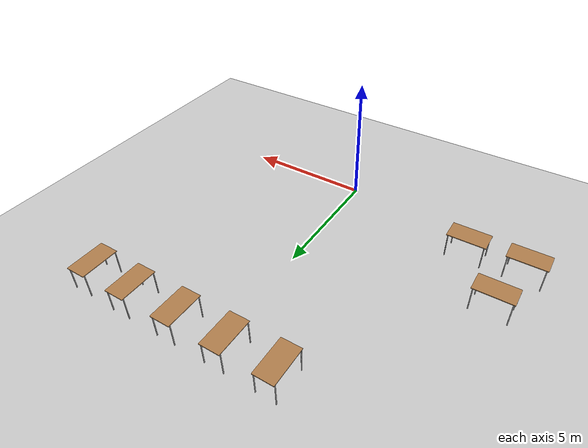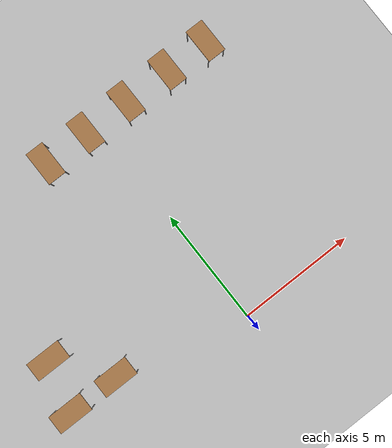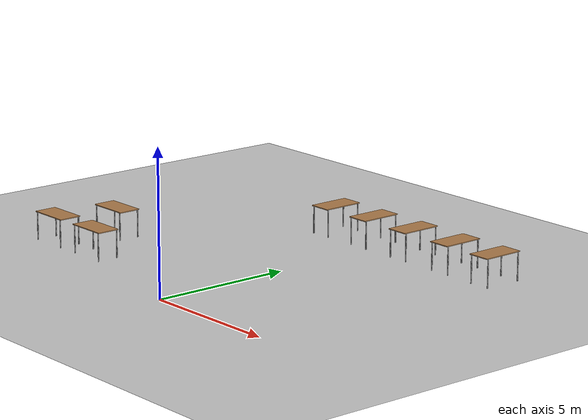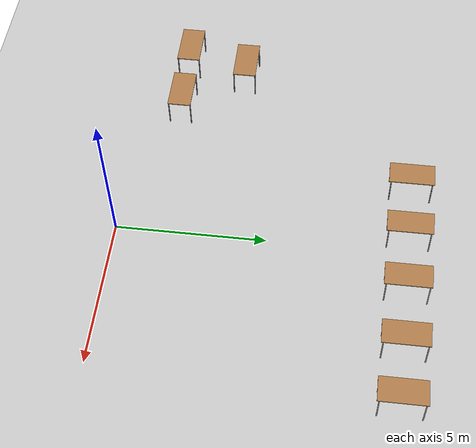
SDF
<sdf version="1.6">
 <world name="default">
  <model name="ground_plane">
   <static>1</static>
   <link name="link">
    <collision name="collision">
     <geometry><plane><normal>0 0 1</normal><size>100 100</size></plane></geometry>
     <surface>
      <contact><collide_bitmask>65535</collide_bitmask></contact>
      <friction><ode><mu>100</mu><mu2>50</mu2></ode></friction>
     </surface>
    </collision>
    <visual name="visual">
     <cast_shadows>0</cast_shadows>
     <geometry><plane><normal>0 0 1</normal><size>100 100</size></plane></geometry>
     <material>
      <script><uri>file://media/materials/scripts/gazebo.material</uri><name>Gazebo/Grey</name></script>
     </material>
    </visual>
   </link>
  </model>
  <model name="table_clone">
   <static>1</static>
   <link name="link">
    <collision name="surface">
     <pose>0 0 1 0 -0 0</pose>
     <geometry><box><size>1.5 0.8 0.03</size></box></geometry>
     <surface><friction><ode><mu>0.6</mu><mu2>0.6</mu2></ode></friction></surface>
    </collision>
    <visual name="visual1">
     <pose>0 0 1 0 -0 0</pose>
     <geometry><box><size>1.5 0.8 0.03</size></box></geometry>
     <material>
      <script><uri>file://media/materials/scripts/gazebo.material</uri><name>Gazebo/Wood</name></script>
     </material>
    </visual>
    <collision name="front_left_leg">
     <pose>0.68 0.38 0.5 0 -0 0</pose>
     <geometry><cylinder><radius>0.02</radius><length>1</length></cylinder></geometry>
    </collision>
    <visual name="front_left_leg">
     <pose>0.68 0.38 0.5 0 -0 0</pose>
     <geometry><cylinder><radius>0.02</radius><length>1</length></cylinder></geometry>
     <material>
      <script><uri>file://media/materials/scripts/gazebo.material</uri><name>Gazebo/Grey</name></script>
     </material>
    </visual>
    <collision name="front_right_leg">
     <pose>0.68 -0.38 0.5 0 -0 0</pose>
     <geometry><cylinder><radius>0.02</radius><length>1</length></cylinder></geometry>
    </collision>
    <visual name="front_right_leg">
     <pose>0.68 -0.38 0.5 0 -0 0</pose>
     <geometry><cylinder><radius>0.02</radius><length>1</length></cylinder></geometry>
     <material>
      <script><uri>file://media/materials/scripts/gazebo.material</uri><name>Gazebo/Grey</name></script>
     </material>
    </visual>
    <collision name="back_right_leg">
     <pose>-0.68 -0.38 0.5 0 -0 0</pose>
     <geometry><cylinder><radius>0.02</radius><length>1</length></cylinder></geometry>
    </collision>
    <visual name="back_right_leg">
     <pose>-0.68 -0.38 0.5 0 -0 0</pose>
     <geometry><cylinder><radius>0.02</radius><length>1</length></cylinder></geometry>
     <material>
      <script><uri>file://media/materials/scripts/gazebo.material</uri><name>Gazebo/Grey</name></script>
     </material>
    </visual>
    <collision name="back_left_leg">
     <pose>-0.68 0.38 0.5 0 -0 0</pose>
     <geometry><cylinder><radius>0.02</radius><length>1</length></cylinder></geometry>
    </collision>
    <visual name="back_left_leg">
     <pose>-0.68 0.38 0.5 0 -0 0</pose>
     <geometry><cylinder><radius>0.02</radius><length>1</length></cylinder></geometry>
     <material>
      <script><uri>file://media/materials/scripts/gazebo.material</uri><name>Gazebo/Grey</name></script>
     </material>
    </visual>
   </link>
   <pose>5.36982 9.5628 0 0 0 -1.57</pose>
  </model>
  <model name="table_clone_0">
   <static>1</static>
   <link name="link">
    <collision name="surface">
     <pose>0 0 1 0 -0 0</pose>
     <geometry><box><size>1.5 0.8 0.03</size></box></geometry>
     <surface><friction><ode><mu>0.6</mu><mu2>0.6</mu2></ode></friction></surface>
    </collision>
    <visual name="visual1">
     <pose>0 0 1 0 -0 0</pose>
     <geometry><box><size>1.5 0.8 0.03</size></box></geometry>
     <material>
      <script><uri>file://media/materials/scripts/gazebo.material</uri><name>Gazebo/Wood</name></script>
     </material>
    </visual>
    <collision name="front_left_leg">
     <pose>0.68 0.38 0.5 0 -0 0</pose>
     <geometry><cylinder><radius>0.02</radius><length>1</length></cylinder></geometry>
    </collision>
    <visual name="front_left_leg">
     <pose>0.68 0.38 0.5 0 -0 0</pose>
     <geometry><cylinder><radius>0.02</radius><length>1</length></cylinder></geometry>
     <material>
      <script><uri>file://media/materials/scripts/gazebo.material</uri><name>Gazebo/Grey</name></script>
     </material>
    </visual>
    <collision name="front_right_leg">
     <pose>0.68 -0.38 0.5 0 -0 0</pose>
     <geometry><cylinder><radius>0.02</radius><length>1</length></cylinder></geometry>
    </collision>
    <visual name="front_right_leg">
     <pose>0.68 -0.38 0.5 0 -0 0</pose>
     <geometry><cylinder><radius>0.02</radius><length>1</length></cylinder></geometry>
     <material>
      <script><uri>file://media/materials/scripts/gazebo.material</uri><name>Gazebo/Grey</name></script>
     </material>
    </visual>
    <collision name="back_right_leg">
     <pose>-0.68 -0.38 0.5 0 -0 0</pose>
     <geometry><cylinder><radius>0.02</radius><length>1</length></cylinder></geometry>
    </collision>
    <visual name="back_right_leg">
     <pose>-0.68 -0.38 0.5 0 -0 0</pose>
     <geometry><cylinder><radius>0.02</radius><length>1</length></cylinder></geometry>
     <material>
      <script><uri>file://media/materials/scripts/gazebo.material</uri><name>Gazebo/Grey</name></script>
     </material>
    </visual>
    <collision name="back_left_leg">
     <pose>-0.68 0.38 0.5 0 -0 0</pose>
     <geometry><cylinder><radius>0.02</radius><length>1</length></cylinder></geometry>
    </collision>
    <visual name="back_left_leg">
     <pose>-0.68 0.38 0.5 0 -0 0</pose>
     <geometry><cylinder><radius>0.02</radius><length>1</length></cylinder></geometry>
     <material>
      <script><uri>file://media/materials/scripts/gazebo.material</uri><name>Gazebo/Grey</name></script>
     </material>
    </visual>
   </link>
   <pose>3.47417 9.59504 0 0 0 -1.57</pose>
  </model>
  <model name="table_clone_1">
   <static>1</static>
   <link name="link">
    <collision name="surface">
     <pose>0 0 1 0 -0 0</pose>
     <geometry><box><size>1.5 0.8 0.03</size></box></geometry>
     <surface><friction><ode><mu>0.6</mu><mu2>0.6</mu2></ode></friction></surface>
    </collision>
    <visual name="visual1">
     <pose>0 0 1 0 -0 0</pose>
     <geometry><box><size>1.5 0.8 0.03</size></box></geometry>
     <material>
      <script><uri>file://media/materials/scripts/gazebo.material</uri><name>Gazebo/Wood</name></script>
     </material>
    </visual>
    <collision name="front_left_leg">
     <pose>0.68 0.38 0.5 0 -0 0</pose>
     <geometry><cylinder><radius>0.02</radius><length>1</length></cylinder></geometry>
    </collision>
    <visual name="front_left_leg">
     <pose>0.68 0.38 0.5 0 -0 0</pose>
     <geometry><cylinder><radius>0.02</radius><length>1</length></cylinder></geometry>
     <material>
      <script><uri>file://media/materials/scripts/gazebo.material</uri><name>Gazebo/Grey</name></script>
     </material>
    </visual>
    <collision name="front_right_leg">
     <pose>0.68 -0.38 0.5 0 -0 0</pose>
     <geometry><cylinder><radius>0.02</radius><length>1</length></cylinder></geometry>
    </collision>
    <visual name="front_right_leg">
     <pose>0.68 -0.38 0.5 0 -0 0</pose>
     <geometry><cylinder><radius>0.02</radius><length>1</length></cylinder></geometry>
     <material>
      <script><uri>file://media/materials/scripts/gazebo.material</uri><name>Gazebo/Grey</name></script>
     </material>
    </visual>
    <collision name="back_right_leg">
     <pose>-0.68 -0.38 0.5 0 -0 0</pose>
     <geometry><cylinder><radius>0.02</radius><length>1</length></cylinder></geometry>
    </collision>
    <visual name="back_right_leg">
     <pose>-0.68 -0.38 0.5 0 -0 0</pose>
     <geometry><cylinder><radius>0.02</radius><length>1</length></cylinder></geometry>
     <material>
      <script><uri>file://media/materials/scripts/gazebo.material</uri><name>Gazebo/Grey</name></script>
     </material>
    </visual>
    <collision name="back_left_leg">
     <pose>-0.68 0.38 0.5 0 -0 0</pose>
     <geometry><cylinder><radius>0.02</radius><length>1</length></cylinder></geometry>
    </collision>
    <visual name="back_left_leg">
     <pose>-0.68 0.38 0.5 0 -0 0</pose>
     <geometry><cylinder><radius>0.02</radius><length>1</length></cylinder></geometry>
     <material>
      <script><uri>file://media/materials/scripts/gazebo.material</uri><name>Gazebo/Grey</name></script>
     </material>
    </visual>
   </link>
   <pose>1.43565 9.59938 0 0 0 -1.57</pose>
  </model>
  <model name="table_clone_2">
   <static>1</static>
   <link name="link">
    <collision name="surface">
     <pose>0 0 1 0 -0 0</pose>
     <geometry><box><size>1.5 0.8 0.03</size></box></geometry>
     <surface><friction><ode><mu>0.6</mu><mu2>0.6</mu2></ode></friction></surface>
    </collision>
    <visual name="visual1">
     <pose>0 0 1 0 -0 0</pose>
     <geometry><box><size>1.5 0.8 0.03</size></box></geometry>
     <material>
      <script><uri>file://media/materials/scripts/gazebo.material</uri><name>Gazebo/Wood</name></script>
     </material>
    </visual>
    <collision name="front_left_leg">
     <pose>0.68 0.38 0.5 0 -0 0</pose>
     <geometry><cylinder><radius>0.02</radius><length>1</length></cylinder></geometry>
    </collision>
    <visual name="front_left_leg">
     <pose>0.68 0.38 0.5 0 -0 0</pose>
     <geometry><cylinder><radius>0.02</radius><length>1</length></cylinder></geometry>
     <material>
      <script><uri>file://media/materials/scripts/gazebo.material</uri><name>Gazebo/Grey</name></script>
     </material>
    </visual>
    <collision name="front_right_leg">
     <pose>0.68 -0.38 0.5 0 -0 0</pose>
     <geometry><cylinder><radius>0.02</radius><length>1</length></cylinder></geometry>
    </collision>
    <visual name="front_right_leg">
     <pose>0.68 -0.38 0.5 0 -0 0</pose>
     <geometry><cylinder><radius>0.02</radius><length>1</length></cylinder></geometry>
     <material>
      <script><uri>file://media/materials/scripts/gazebo.material</uri><name>Gazebo/Grey</name></script>
     </material>
    </visual>
    <collision name="back_right_leg">
     <pose>-0.68 -0.38 0.5 0 -0 0</pose>
     <geometry><cylinder><radius>0.02</radius><length>1</length></cylinder></geometry>
    </collision>
    <visual name="back_right_leg">
     <pose>-0.68 -0.38 0.5 0 -0 0</pose>
     <geometry><cylinder><radius>0.02</radius><length>1</length></cylinder></geometry>
     <material>
      <script><uri>file://media/materials/scripts/gazebo.material</uri><name>Gazebo/Grey</name></script>
     </material>
    </visual>
    <collision name="back_left_leg">
     <pose>-0.68 0.38 0.5 0 -0 0</pose>
     <geometry><cylinder><radius>0.02</radius><length>1</length></cylinder></geometry>
    </collision>
    <visual name="back_left_leg">
     <pose>-0.68 0.38 0.5 0 -0 0</pose>
     <geometry><cylinder><radius>0.02</radius><length>1</length></cylinder></geometry>
     <material>
      <script><uri>file://media/materials/scripts/gazebo.material</uri><name>Gazebo/Grey</name></script>
     </material>
    </visual>
   </link>
   <pose>-0.563458 9.59911 0 0 0 -1.57</pose>
  </model>
  <model name="table_clone_3">
   <static>1</static>
   <link name="link">
    <collision name="surface">
     <pose>0 0 1 0 -0 0</pose>
     <geometry><box><size>1.5 0.8 0.03</size></box></geometry>
     <surface><friction><ode><mu>0.6</mu><mu2>0.6</mu2></ode></friction></surface>
    </collision>
    <visual name="visual1">
     <pose>0 0 1 0 -0 0</pose>
     <geometry><box><size>1.5 0.8 0.03</size></box></geometry>
     <material>
      <script><uri>file://media/materials/scripts/gazebo.material</uri><name>Gazebo/Wood</name></script>
     </material>
    </visual>
    <collision name="front_left_leg">
     <pose>0.68 0.38 0.5 0 -0 0</pose>
     <geometry><cylinder><radius>0.02</radius><length>1</length></cylinder></geometry>
    </collision>
    <visual name="front_left_leg">
     <pose>0.68 0.38 0.5 0 -0 0</pose>
     <geometry><cylinder><radius>0.02</radius><length>1</length></cylinder></geometry>
     <material>
      <script><uri>file://media/materials/scripts/gazebo.material</uri><name>Gazebo/Grey</name></script>
     </material>
    </visual>
    <collision name="front_right_leg">
     <pose>0.68 -0.38 0.5 0 -0 0</pose>
     <geometry><cylinder><radius>0.02</radius><length>1</length></cylinder></geometry>
    </collision>
    <visual name="front_right_leg">
     <pose>0.68 -0.38 0.5 0 -0 0</pose>
     <geometry><cylinder><radius>0.02</radius><length>1</length></cylinder></geometry>
     <material>
      <script><uri>file://media/materials/scripts/gazebo.material</uri><name>Gazebo/Grey</name></script>
     </material>
    </visual>
    <collision name="back_right_leg">
     <pose>-0.68 -0.38 0.5 0 -0 0</pose>
     <geometry><cylinder><radius>0.02</radius><length>1</length></cylinder></geometry>
    </collision>
    <visual name="back_right_leg">
     <pose>-0.68 -0.38 0.5 0 -0 0</pose>
     <geometry><cylinder><radius>0.02</radius><length>1</length></cylinder></geometry>
     <material>
      <script><uri>file://media/materials/scripts/gazebo.material</uri><name>Gazebo/Grey</name></script>
     </material>
    </visual>
    <collision name="back_left_leg">
     <pose>-0.68 0.38 0.5 0 -0 0</pose>
     <geometry><cylinder><radius>0.02</radius><length>1</length></cylinder></geometry>
    </collision>
    <visual name="back_left_leg">
     <pose>-0.68 0.38 0.5 0 -0 0</pose>
     <geometry><cylinder><radius>0.02</radius><length>1</length></cylinder></geometry>
     <material>
      <script><uri>file://media/materials/scripts/gazebo.material</uri><name>Gazebo/Grey</name></script>
     </material>
    </visual>
   </link>
   <pose>-2.5236 9.5957 0 0 0 -1.57</pose>
  </model>
  <model name="table">
   <static>1</static>
   <link name="link">
    <collision name="surface">
     <pose>0 0 1 0 -0 0</pose>
     <geometry><box><size>1.5 0.8 0.03</size></box></geometry>
     <surface><friction><ode><mu>0.6</mu><mu2>0.6</mu2></ode></friction></surface>
    </collision>
    <visual name="visual1">
     <pose>0 0 1 0 -0 0</pose>
     <geometry><box><size>1.5 0.8 0.03</size></box></geometry>
     <material>
      <script><uri>file://media/materials/scripts/gazebo.material</uri><name>Gazebo/Wood</name></script>
     </material>
    </visual>
    <collision name="front_left_leg">
     <pose>0.68 0.38 0.5 0 -0 0</pose>
     <geometry><cylinder><radius>0.02</radius><length>1</length></cylinder></geometry>
    </collision>
    <visual name="front_left_leg">
     <pose>0.68 0.38 0.5 0 -0 0</pose>
     <geometry><cylinder><radius>0.02</radius><length>1</length></cylinder></geometry>
     <material>
      <script><uri>file://media/materials/scripts/gazebo.material</uri><name>Gazebo/Grey</name></script>
     </material>
    </visual>
    <collision name="front_right_leg">
     <pose>0.68 -0.38 0.5 0 -0 0</pose>
     <geometry><cylinder><radius>0.02</radius><length>1</length></cylinder></geometry>
    </collision>
    <visual name="front_right_leg">
     <pose>0.68 -0.38 0.5 0 -0 0</pose>
     <geometry><cylinder><radius>0.02</radius><length>1</length></cylinder></geometry>
     <material>
      <script><uri>file://media/materials/scripts/gazebo.material</uri><name>Gazebo/Grey</name></script>
     </material>
    </visual>
    <collision name="back_right_leg">
     <pose>-0.68 -0.38 0.5 0 -0 0</pose>
     <geometry><cylinder><radius>0.02</radius><length>1</length></cylinder></geometry>
    </collision>
    <visual name="back_right_leg">
     <pose>-0.68 -0.38 0.5 0 -0 0</pose>
     <geometry><cylinder><radius>0.02</radius><length>1</length></cylinder></geometry>
     <material>
      <script><uri>file://media/materials/scripts/gazebo.material</uri><name>Gazebo/Grey</name></script>
     </material>
    </visual>
    <collision name="back_left_leg">
     <pose>-0.68 0.38 0.5 0 -0 0</pose>
     <geometry><cylinder><radius>0.02</radius><length>1</length></cylinder></geometry>
    </collision>
    <visual name="back_left_leg">
     <pose>-0.68 0.38 0.5 0 -0 0</pose>
     <geometry><cylinder><radius>0.02</radius><length>1</length></cylinder></geometry>
     <material>
      <script><uri>file://media/materials/scripts/gazebo.material</uri><name>Gazebo/Grey</name></script>
     </material>
    </visual>
   </link>
   <pose>-7.63732 1.38708 0 0 -0 0</pose>
  </model>
  <model name="table_clone_4">
   <static>1</static>
   <link name="link">
    <collision name="surface">
     <pose>0 0 1 0 -0 0</pose>
     <geometry><box><size>1.5 0.8 0.03</size></box></geometry>
     <surface><friction><ode><mu>0.6</mu><mu2>0.6</mu2></ode></friction></surface>
    </collision>
    <visual name="visual1">
     <pose>0 0 1 0 -0 0</pose>
     <geometry><box><size>1.5 0.8 0.03</size></box></geometry>
     <material>
      <script><uri>file://media/materials/scripts/gazebo.material</uri><name>Gazebo/Wood</name></script>
     </material>
    </visual>
    <collision name="front_left_leg">
     <pose>0.68 0.38 0.5 0 -0 0</pose>
     <geometry><cylinder><radius>0.02</radius><length>1</length></cylinder></geometry>
    </collision>
    <visual name="front_left_leg">
     <pose>0.68 0.38 0.5 0 -0 0</pose>
     <geometry><cylinder><radius>0.02</radius><length>1</length></cylinder></geometry>
     <material>
      <script><uri>file://media/materials/scripts/gazebo.material</uri><name>Gazebo/Grey</name></script>
     </material>
    </visual>
    <collision name="front_right_leg">
     <pose>0.68 -0.38 0.5 0 -0 0</pose>
     <geometry><cylinder><radius>0.02</radius><length>1</length></cylinder></geometry>
    </collision>
    <visual name="front_right_leg">
     <pose>0.68 -0.38 0.5 0 -0 0</pose>
     <geometry><cylinder><radius>0.02</radius><length>1</length></cylinder></geometry>
     <material>
      <script><uri>file://media/materials/scripts/gazebo.material</uri><name>Gazebo/Grey</name></script>
     </material>
    </visual>
    <collision name="back_right_leg">
     <pose>-0.68 -0.38 0.5 0 -0 0</pose>
     <geometry><cylinder><radius>0.02</radius><length>1</length></cylinder></geometry>
    </collision>
    <visual name="back_right_leg">
     <pose>-0.68 -0.38 0.5 0 -0 0</pose>
     <geometry><cylinder><radius>0.02</radius><length>1</length></cylinder></geometry>
     <material>
      <script><uri>file://media/materials/scripts/gazebo.material</uri><name>Gazebo/Grey</name></script>
     </material>
    </visual>
    <collision name="back_left_leg">
     <pose>-0.68 0.38 0.5 0 -0 0</pose>
     <geometry><cylinder><radius>0.02</radius><length>1</length></cylinder></geometry>
    </collision>
    <visual name="back_left_leg">
     <pose>-0.68 0.38 0.5 0 -0 0</pose>
     <geometry><cylinder><radius>0.02</radius><length>1</length></cylinder></geometry>
     <material>
      <script><uri>file://media/materials/scripts/gazebo.material</uri><name>Gazebo/Grey</name></script>
     </material>
    </visual>
   </link>
   <pose>-5.43848 1.40059 0 0 -0 0</pose>
  </model>
  <model name="table_clone_11">
   <static>1</static>
   <link name="link">
    <collision name="surface">
     <pose>0 0 1 0 -0 0</pose>
     <geometry><box><size>1.5 0.8 0.03</size></box></geometry>
     <surface><friction><ode><mu>0.6</mu><mu2>0.6</mu2></ode></friction></surface>
    </collision>
    <visual name="visual1">
     <pose>0 0 1 0 -0 0</pose>
     <geometry><box><size>1.5 0.8 0.03</size></box></geometry>
     <material>
      <script><uri>file://media/materials/scripts/gazebo.material</uri><name>Gazebo/Wood</name></script>
     </material>
    </visual>
    <collision name="front_left_leg">
     <pose>0.68 0.38 0.5 0 -0 0</pose>
     <geometry><cylinder><radius>0.02</radius><length>1</length></cylinder></geometry>
    </collision>
    <visual name="front_left_leg">
     <pose>0.68 0.38 0.5 0 -0 0</pose>
     <geometry><cylinder><radius>0.02</radius><length>1</length></cylinder></geometry>
     <material>
      <script><uri>file://media/materials/scripts/gazebo.material</uri><name>Gazebo/Grey</name></script>
     </material>
    </visual>
    <collision name="front_right_leg">
     <pose>0.68 -0.38 0.5 0 -0 0</pose>
     <geometry><cylinder><radius>0.02</radius><length>1</length></cylinder></geometry>
    </collision>
    <visual name="front_right_leg">
     <pose>0.68 -0.38 0.5 0 -0 0</pose>
     <geometry><cylinder><radius>0.02</radius><length>1</length></cylinder></geometry>
     <material>
      <script><uri>file://media/materials/scripts/gazebo.material</uri><name>Gazebo/Grey</name></script>
     </material>
    </visual>
    <collision name="back_right_leg">
     <pose>-0.68 -0.38 0.5 0 -0 0</pose>
     <geometry><cylinder><radius>0.02</radius><length>1</length></cylinder></geometry>
    </collision>
    <visual name="back_right_leg">
     <pose>-0.68 -0.38 0.5 0 -0 0</pose>
     <geometry><cylinder><radius>0.02</radius><length>1</length></cylinder></geometry>
     <material>
      <script><uri>file://media/materials/scripts/gazebo.material</uri><name>Gazebo/Grey</name></script>
     </material>
    </visual>
    <collision name="back_left_leg">
     <pose>-0.68 0.38 0.5 0 -0 0</pose>
     <geometry><cylinder><radius>0.02</radius><length>1</length></cylinder></geometry>
    </collision>
    <visual name="back_left_leg">
     <pose>-0.68 0.38 0.5 0 -0 0</pose>
     <geometry><cylinder><radius>0.02</radius><length>1</length></cylinder></geometry>
     <material>
      <script><uri>file://media/materials/scripts/gazebo.material</uri><name>Gazebo/Grey</name></script>
     </material>
    </visual>
   </link>
   <pose>-7.08899 3.49444 0 0 -0 0</pose>
  </model>
 </world>
</sdf>
